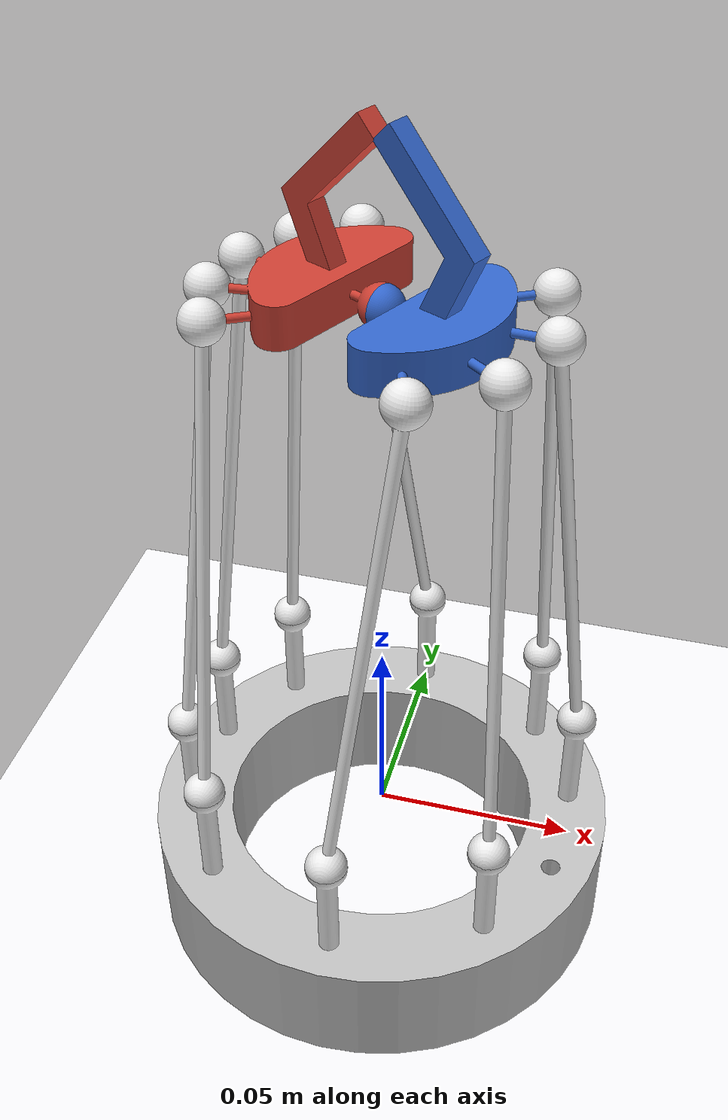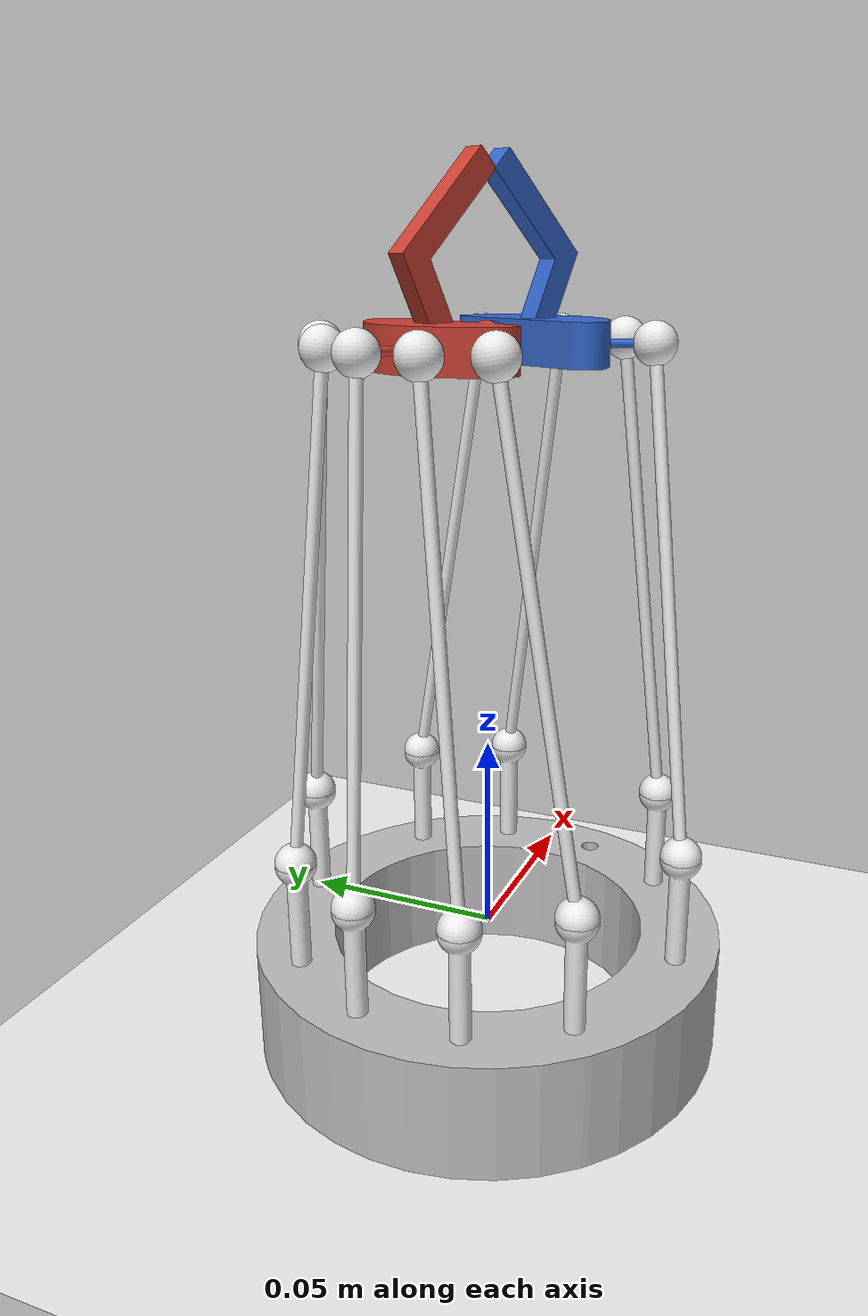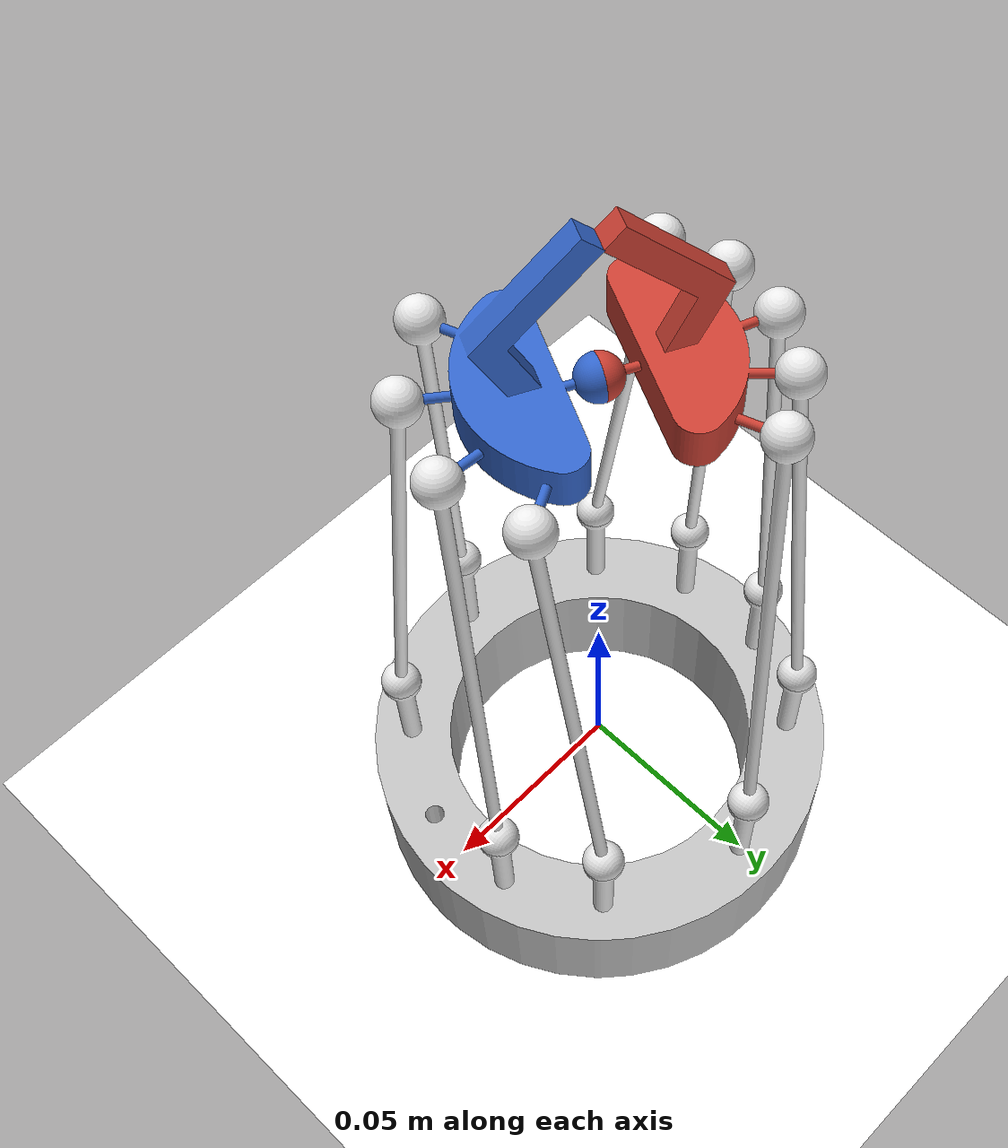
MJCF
<!-- Clean scene for the showcase video (ninedof_mujoco showcase_video). -->
<mujoco model="ninedof_showcase">
  <include file="ninedof.xml"/>

  <visual>
    <global offwidth="1920" offheight="1080"/>
    <quality shadowsize="4096"/>
    <headlight ambient="0.45 0.45 0.45" diffuse="0.45 0.45 0.45" specular="0 0 0"/>
  </visual>

  <asset>
    <texture type="skybox" builtin="flat" rgb1="1 1 1" rgb2="1 1 1"
             width="32" height="32"/>
    <material name="showcase_floor" rgba="0.96 0.96 0.97 1" emission="0.75"/>
  </asset>

  <worldbody>
    <light pos="0.4 -0.5 0.9" dir="-0.4 0.5 -0.9" diffuse="0.6 0.6 0.6" castshadow="true"/>
    <light pos="-0.5 0.3 0.7" dir="0.5 -0.3 -0.7" diffuse="0.25 0.25 0.25" castshadow="false"/>
    <geom name="floor" type="plane" size="2 2 0.05" pos="0 0 -0.03" material="showcase_floor"
          contype="0" conaffinity="0"/>
    <camera name="showcase_cam" mode="fixed" pos="0.290 -0.319 0.262"
            xyaxes="0.604 0.797 -0.000 -0.313 0.237 0.920" fovy="38"/>
  </worldbody>
</mujoco>

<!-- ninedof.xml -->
<!-- Generated by scripts/generate_mjcf.py from the files in config/.
     Do not edit by hand. -->
<mujoco model="ninedof">
  <compiler angle="radian" meshdir="../meshes" autolimits="true"/>
  <option timestep="0.0005" integrator="implicitfast"/>

  <default>
    <default class="visual">
      <geom type="mesh" contype="0" conaffinity="0" group="2" mass="0"/>
    </default>
    <default class="finger">
      <geom type="mesh" contype="2" conaffinity="0" condim="4" group="3" mass="0" friction="0.4 0.02 0.0001" rgba="0.9 0.6 0.1 0.4"/>
    </default>
    <equality solref="0.001 1" solimp="0.99 0.999 0.0001"/>
  </default>

  <asset>
    <mesh name="base" file="base.stl"/>
    <mesh name="slider" file="slider.stl"/>
    <mesh name="distal_link" file="distal_link.stl"/>
    <mesh name="platform_1" file="platform_1.stl"/>
    <mesh name="platform_2" file="platform_2.stl"/>
    <mesh name="finger_1_lower" vertex="-0.01782 0.00609 0.005 -0.00967 0.00761 0.005 -0.0119 0.00314 0.005 -0.01559 0.01057 0.005 -0.01721 0.00579 0.01773 -0.01498 0.01026 0.01773 -0.02367 0.00901 0.019 -0.02144 0.01348 0.019"/>
    <mesh name="finger_1_upper" vertex="-0.01721 0.00579 0.01773 -0.01498 0.01026 0.01773 -0.02367 0.00901 0.019 -0.02144 0.01348 0.019 0.00135 0.00212 0.03597 -0.00089 -0.00235 0.03597 -0.00245 0.00402 0.04021 -0.00468 -0.00046 0.04021"/>
    <mesh name="finger_2_lower" vertex="0.0119 -0.00314 0.005 0.01559 -0.01057 0.005 0.00967 -0.00761 0.005 0.01782 -0.00609 0.005 0.01721 -0.00579 0.01773 0.01498 -0.01026 0.01773 0.02367 -0.00901 0.019 0.02144 -0.01348 0.019"/>
    <mesh name="finger_2_upper" vertex="0.01721 -0.00579 0.01773 0.01498 -0.01026 0.01773 0.02367 -0.00901 0.019 0.02144 -0.01348 0.019 -0.00135 -0.00212 0.03597 0.00089 0.00235 0.03597 0.00245 -0.00402 0.04021 0.00468 0.00046 0.04021"/>
    <material name="base_grey" rgba="0.75 0.75 0.75 1"/>
    <material name="rod_white" rgba="0.92 0.92 0.92 1"/>
    <material name="platform_1_red" rgba="0.80 0.25 0.20 1"/>
    <material name="platform_2_blue" rgba="0.20 0.40 0.80 1"/>
  </asset>

  <worldbody>
    <body name="base_link">
      <geom class="visual" mesh="base" material="base_grey" pos="0 0 -0.03"/>
      <body name="leg1_slider" pos="-0 0.05 -0.0220148755">
        <joint name="leg1_actuator_joint" type="slide" axis="0 0 1" ref="5.12447657e-06" range="-0.025 0.025" armature="0.01" actuatorfrcrange="-20.0 20.0"/>
        <inertial pos="0 0 0.02525" mass="0.015" diaginertia="3.1878125e-06 3.1878125e-06 1e-09"/>
        <geom class="visual" mesh="slider" material="rod_white"/>
        <body name="leg1_distal" pos="0 0 0.0505" quat="0.996232226 0.0646184678 -0.0578429391 0">
          <joint name="leg1_lower_joint" type="ball" damping="0.0005"/>
          <inertial pos="0 0 0.06" mass="0.005" fullinertia="1.2486e-05 1.2486e-05 3.0725e-08 0 0 0"/>
          <geom class="visual" mesh="distal_link" material="rod_white"/>
          <site name="leg1_A" pos="0 0 0.12" size="0.002"/>
        </body>
      </body>
      <body name="leg2_slider" pos="-0.03543 0.03543 -0.0231955649">
        <joint name="leg2_actuator_joint" type="slide" axis="0 0 1" ref="4.43507987e-06" range="-0.025 0.025" armature="0.01" actuatorfrcrange="-20.0 20.0"/>
        <inertial pos="0 0 0.02525" mass="0.015" diaginertia="3.1878125e-06 3.1878125e-06 1e-09"/>
        <geom class="visual" mesh="slider" material="rod_white"/>
        <body name="leg2_distal" pos="0 0 0.0505" quat="0.998698246 0.0362138081 0.0359217613 -0">
          <joint name="leg2_lower_joint" type="ball" damping="0.0005"/>
          <inertial pos="0 0 0.06" mass="0.005" fullinertia="1.2486e-05 1.2486e-05 3.0725e-08 0 0 0"/>
          <geom class="visual" mesh="distal_link" material="rod_white"/>
          <site name="leg2_A" pos="0 0 0.12" size="0.002"/>
        </body>
      </body>
      <body name="leg3_slider" pos="-0.0483 0.01294 -0.0231061157">
        <joint name="leg3_actuator_joint" type="slide" axis="0 0 1" ref="3.88429494e-06" range="-0.025 0.025" armature="0.01" actuatorfrcrange="-20.0 20.0"/>
        <inertial pos="0 0 0.02525" mass="0.015" diaginertia="3.1878125e-06 3.1878125e-06 1e-09"/>
        <geom class="visual" mesh="slider" material="rod_white"/>
        <body name="leg3_distal" pos="0 0 0.0505" quat="0.998511633 -0.0052160968 0.0542891355 0">
          <joint name="leg3_lower_joint" type="ball" damping="0.0005"/>
          <inertial pos="0 0 0.06" mass="0.005" fullinertia="1.2486e-05 1.2486e-05 3.0725e-08 0 0 0"/>
          <geom class="visual" mesh="distal_link" material="rod_white"/>
          <site name="leg3_A" pos="0 0 0.12" size="0.002"/>
        </body>
      </body>
      <body name="leg4_slider" pos="-0.0483 -0.01294 -0.0227261878">
        <joint name="leg4_actuator_joint" type="slide" axis="0 0 1" ref="3.81218793e-06" range="-0.025 0.025" armature="0.01" actuatorfrcrange="-20.0 20.0"/>
        <inertial pos="0 0 0.02525" mass="0.015" diaginertia="3.1878125e-06 3.1878125e-06 1e-09"/>
        <geom class="visual" mesh="slider" material="rod_white"/>
        <body name="leg4_distal" pos="0 0 0.0505" quat="0.997718622 -0.0508242827 0.0444347057 0">
          <joint name="leg4_lower_joint" type="ball" damping="0.0005"/>
          <inertial pos="0 0 0.06" mass="0.005" fullinertia="1.2486e-05 1.2486e-05 3.0725e-08 0 0 0"/>
          <geom class="visual" mesh="distal_link" material="rod_white"/>
          <site name="leg4_A" pos="0 0 0.12" size="0.002"/>
        </body>
      </body>
      <body name="leg5_slider" pos="-0.03536 -0.03536 -0.0221234349">
        <joint name="leg5_actuator_joint" type="slide" axis="0 0 1" ref="6.56513862e-06" range="-0.025 0.025" armature="0.01" actuatorfrcrange="-20.0 20.0"/>
        <inertial pos="0 0 0.02525" mass="0.015" diaginertia="3.1878125e-06 3.1878125e-06 1e-09"/>
        <geom class="visual" mesh="slider" material="rod_white"/>
        <body name="leg5_distal" pos="0 0 0.0505" quat="0.996459221 -0.0837130762 0.00781935327 0">
          <joint name="leg5_lower_joint" type="ball" damping="0.0005"/>
          <inertial pos="0 0 0.06" mass="0.005" fullinertia="1.2486e-05 1.2486e-05 3.0725e-08 0 0 0"/>
          <geom class="visual" mesh="distal_link" material="rod_white"/>
          <site name="leg5_A" pos="0 0 0.12" size="0.002"/>
        </body>
      </body>
      <body name="leg6_slider" pos="0.0483 0.01294 -0.0220915579">
        <joint name="leg6_actuator_joint" type="slide" axis="0 0 1" ref="-1.55786579e-06" range="-0.025 0.025" armature="0.01" actuatorfrcrange="-20.0 20.0"/>
        <inertial pos="0 0 0.02525" mass="0.015" diaginertia="3.1878125e-06 3.1878125e-06 1e-09"/>
        <geom class="visual" mesh="slider" material="rod_white"/>
        <body name="leg6_distal" pos="0 0 0.0505" quat="0.996392572 0.0721352226 -0.0447029293 0">
          <joint name="leg6_lower_joint" type="ball" damping="0.0005"/>
          <inertial pos="0 0 0.06" mass="0.005" fullinertia="1.2486e-05 1.2486e-05 3.0725e-08 0 0 0"/>
          <geom class="visual" mesh="distal_link" material="rod_white"/>
          <site name="leg6_A" pos="0 0 0.12" size="0.002"/>
        </body>
      </body>
      <body name="leg7_slider" pos="0.03536 0.03536 -0.0221234349">
        <joint name="leg7_actuator_joint" type="slide" axis="0 0 1" ref="6.56513862e-06" range="-0.025 0.025" armature="0.01" actuatorfrcrange="-20.0 20.0"/>
        <inertial pos="0 0 0.02525" mass="0.015" diaginertia="3.1878125e-06 3.1878125e-06 1e-09"/>
        <geom class="visual" mesh="slider" material="rod_white"/>
        <body name="leg7_distal" pos="0 0 0.0505" quat="0.996459221 0.0837130762 -0.00781935327 0">
          <joint name="leg7_lower_joint" type="ball" damping="0.0005"/>
          <inertial pos="0 0 0.06" mass="0.005" fullinertia="1.2486e-05 1.2486e-05 3.0725e-08 0 0 0"/>
          <geom class="visual" mesh="distal_link" material="rod_white"/>
          <site name="leg7_A" pos="0 0 0.12" size="0.002"/>
        </body>
      </body>
      <body name="leg8_slider" pos="-0 -0.05 -0.0220148755">
        <joint name="leg8_actuator_joint" type="slide" axis="0 0 1" ref="5.12447657e-06" range="-0.025 0.025" armature="0.01" actuatorfrcrange="-20.0 20.0"/>
        <inertial pos="0 0 0.02525" mass="0.015" diaginertia="3.1878125e-06 3.1878125e-06 1e-09"/>
        <geom class="visual" mesh="slider" material="rod_white"/>
        <body name="leg8_distal" pos="0 0 0.0505" quat="0.996232226 -0.0646184678 0.0578429391 0">
          <joint name="leg8_lower_joint" type="ball" damping="0.0005"/>
          <inertial pos="0 0 0.06" mass="0.005" fullinertia="1.2486e-05 1.2486e-05 3.0725e-08 0 0 0"/>
          <geom class="visual" mesh="distal_link" material="rod_white"/>
          <site name="leg8_A" pos="0 0 0.12" size="0.002"/>
        </body>
      </body>
      <body name="leg9_slider" pos="0.03536 -0.03536 -0.0230712935">
        <joint name="leg9_actuator_joint" type="slide" axis="0 0 1" ref="8.70650597e-06" range="-0.025 0.025" armature="0.01" actuatorfrcrange="-20.0 20.0"/>
        <inertial pos="0 0 0.02525" mass="0.015" diaginertia="3.1878125e-06 3.1878125e-06 1e-09"/>
        <geom class="visual" mesh="slider" material="rod_white"/>
        <body name="leg9_distal" pos="0 0 0.0505" quat="0.998438976 -0.0516222502 -0.0213249554 0">
          <joint name="leg9_lower_joint" type="ball" damping="0.0005"/>
          <inertial pos="0 0 0.06" mass="0.005" fullinertia="1.2486e-05 1.2486e-05 3.0725e-08 0 0 0"/>
          <geom class="visual" mesh="distal_link" material="rod_white"/>
          <site name="leg9_A" pos="0 0 0.12" size="0.002"/>
        </body>
      </body>
    </body>
      <body name="platform_1" pos="0 0 0.14668">
        <freejoint name="platform_1_free"/>
        <inertial pos="-0.01581 0.007503 0.002803" mass="0.025" fullinertia="4.9274e-06 3.9517e-06 5.2415e-06 -6.7395e-07 -3.4207e-07 1.4387e-07"/>
        <geom class="visual" mesh="platform_1" material="platform_1_red"/>
        <geom class="finger" name="finger_1_lower" mesh="finger_1_lower"/>
        <geom class="finger" name="finger_1_upper" mesh="finger_1_upper"/>
        <body name="platform_2">
          <joint name="central_sphere_joint" type="ball" damping="0.0005"/>
          <inertial pos="0.015363 -0.007355 0.002882" mass="0.025" fullinertia="4.8955e-06 3.8475e-06 5.0176e-06 -6.9869e-07 3.196e-07 -1.3731e-07"/>
          <geom class="visual" mesh="platform_2" material="platform_2_blue"/>
          <geom class="finger" name="finger_2_lower" mesh="finger_2_lower"/>
          <geom class="finger" name="finger_2_upper" mesh="finger_2_upper"/>
        </body>
      </body>
  </worldbody>

  <equality>
    <connect name="leg1_upper_joint" body1="leg1_distal" body2="platform_1" anchor="0 0 0.12"/>
    <connect name="leg2_upper_joint" body1="leg2_distal" body2="platform_1" anchor="0 0 0.12"/>
    <connect name="leg3_upper_joint" body1="leg3_distal" body2="platform_1" anchor="0 0 0.12"/>
    <connect name="leg4_upper_joint" body1="leg4_distal" body2="platform_1" anchor="0 0 0.12"/>
    <connect name="leg5_upper_joint" body1="leg5_distal" body2="platform_1" anchor="0 0 0.12"/>
    <connect name="leg6_upper_joint" body1="leg6_distal" body2="platform_2" anchor="0 0 0.12"/>
    <connect name="leg7_upper_joint" body1="leg7_distal" body2="platform_2" anchor="0 0 0.12"/>
    <connect name="leg8_upper_joint" body1="leg8_distal" body2="platform_2" anchor="0 0 0.12"/>
    <connect name="leg9_upper_joint" body1="leg9_distal" body2="platform_2" anchor="0 0 0.12"/>
  </equality>

  <contact>
    <exclude body1="platform_1" body2="platform_2"/>
  </contact>

  <actuator>
    <position name="leg1_actuator_joint" joint="leg1_actuator_joint" kp="50000.0" dampratio="1.0" ctrlrange="-0.025 0.025" forcerange="-20.0 20.0"/>
    <position name="leg2_actuator_joint" joint="leg2_actuator_joint" kp="50000.0" dampratio="1.0" ctrlrange="-0.025 0.025" forcerange="-20.0 20.0"/>
    <position name="leg3_actuator_joint" joint="leg3_actuator_joint" kp="50000.0" dampratio="1.0" ctrlrange="-0.025 0.025" forcerange="-20.0 20.0"/>
    <position name="leg4_actuator_joint" joint="leg4_actuator_joint" kp="50000.0" dampratio="1.0" ctrlrange="-0.025 0.025" forcerange="-20.0 20.0"/>
    <position name="leg5_actuator_joint" joint="leg5_actuator_joint" kp="50000.0" dampratio="1.0" ctrlrange="-0.025 0.025" forcerange="-20.0 20.0"/>
    <position name="leg6_actuator_joint" joint="leg6_actuator_joint" kp="50000.0" dampratio="1.0" ctrlrange="-0.025 0.025" forcerange="-20.0 20.0"/>
    <position name="leg7_actuator_joint" joint="leg7_actuator_joint" kp="50000.0" dampratio="1.0" ctrlrange="-0.025 0.025" forcerange="-20.0 20.0"/>
    <position name="leg8_actuator_joint" joint="leg8_actuator_joint" kp="50000.0" dampratio="1.0" ctrlrange="-0.025 0.025" forcerange="-20.0 20.0"/>
    <position name="leg9_actuator_joint" joint="leg9_actuator_joint" kp="50000.0" dampratio="1.0" ctrlrange="-0.025 0.025" forcerange="-20.0 20.0"/>
  </actuator>

  <sensor>
    <actuatorfrc name="leg1_force" actuator="leg1_actuator_joint"/>
    <actuatorfrc name="leg2_force" actuator="leg2_actuator_joint"/>
    <actuatorfrc name="leg3_force" actuator="leg3_actuator_joint"/>
    <actuatorfrc name="leg4_force" actuator="leg4_actuator_joint"/>
    <actuatorfrc name="leg5_force" actuator="leg5_actuator_joint"/>
    <actuatorfrc name="leg6_force" actuator="leg6_actuator_joint"/>
    <actuatorfrc name="leg7_force" actuator="leg7_actuator_joint"/>
    <actuatorfrc name="leg8_force" actuator="leg8_actuator_joint"/>
    <actuatorfrc name="leg9_force" actuator="leg9_actuator_joint"/>
  </sensor>
</mujoco>
